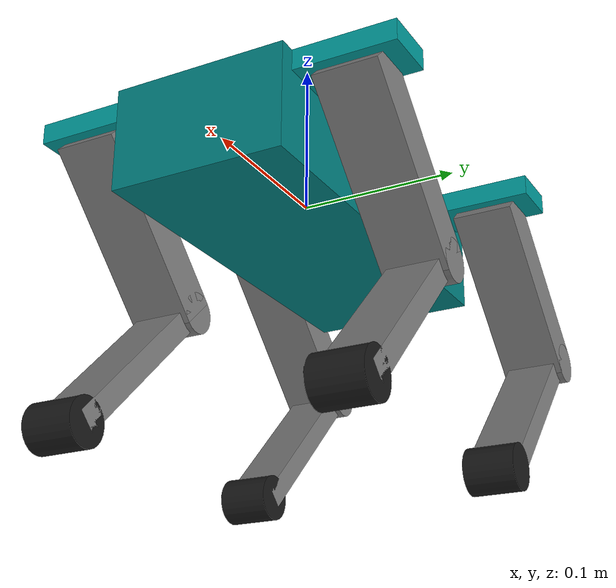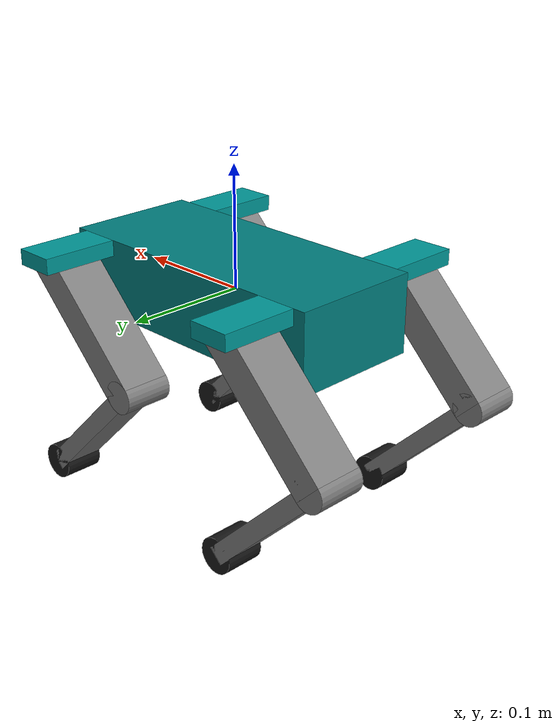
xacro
<?xml version="1.0"?>
<robot name="sparke" xmlns:xacro="http://ros.org/wiki/xacro">
	<!-- Constants -->
  <xacro:property name="base_length" value="0.254"/>
	<xacro:property name="base_width" value="0.11"/>
  <xacro:property name="base_height" value="0.065"/>

  <xacro:property name="shoulder_length" value="0.034"/>
	<xacro:property name="shoulder_width" value="0.0635"/>
  <xacro:property name="shoulder_height" value="0.013"/>

  <xacro:property name="leg_length" value="0.125"/>
	<xacro:property name="leg_width" value="0.040"/>
  <xacro:property name="leg_height" value="0.027"/>

  <xacro:property name="elbow_radius" value="0.0135"/>
	<xacro:property name="elbow_width" value="0.040"/>

  <xacro:property name="wrist_length" value="0.135"/>
	<xacro:property name="wrist_width" value="0.0325"/>
  <xacro:property name="wrist_height" value="0.015"/>

  <xacro:property name="foot_radius" value="0.015"/>
	<xacro:property name="foot_width" value="0.0325"/>

  <!-- Define intertial property macros  -->
  <xacro:macro name="box_inertia" params="m w h d">
    <inertial>
      <origin xyz="0 0 0" rpy="${pi/2} 0 ${pi/2}"/>
      <mass value="${m}"/>
      <inertia ixx="${(m/12) * (h*h + d*d)}" ixy="0.0" ixz="0.0" iyy="${(m/12) * (w*w + d*d)}" iyz="0.0" izz="${(m/12) * (w*w + h*h)}"/>
    </inertial>
  </xacro:macro>

  <xacro:macro name="cylinder_inertia" params="m r h">
    <inertial>
      <origin xyz="0 0 0" rpy="${pi/2} 0 0" />
      <mass value="${m}"/>
      <inertia ixx="${(m/12) * (3*r*r + h*h)}" ixy = "0" ixz = "0" iyy="${(m/12) * (3*r*r + h*h)}" iyz = "0" izz="${(m/2) * (r*r)}"/>
    </inertial>
  </xacro:macro>

  <xacro:macro name="sphere_inertia" params="m r">
    <inertial>
      <mass value="${m}"/>
      <inertia ixx="${(2/5) * m * (r*r)}" ixy="0.0" ixz="0.0" iyy="${(2/5) * m * (r*r)}" iyz="0.0" izz="${(2/5) * m * (r*r)}"/>
    </inertial>
  </xacro:macro>

	<!-- Robot Base -->
  <link name="base_link">
    <visual>
      <geometry>
        <box size="${base_length} ${base_width} ${base_height}"/>
      </geometry>
      <material name="Body">
        <color rgba="0 0.5 0.5 1"/>
      </material>
    </visual>

    <collision>
      <geometry>
        <box size="${base_length} ${base_width} ${base_height}"/>
      </geometry>
    </collision>

    <xacro:box_inertia m="1.0" w="${base_width}" d="${base_length}" h="${base_height}"/>
  </link>

  <gazebo reference="base_link">
      <mu>50</mu>
      <mu2>25</mu2>
      <kp value="50000.0"/>
      <kd value="0.05"/>
      <dampingFactor value="0.0"/>
    </gazebo>

	<!-- Robot Footprint -->
  <link name="base_footprint">
    <xacro:box_inertia m="1.0" w="${base_width}" d="${base_length}" h="${base_height}"/>
  </link>

  <gazebo reference="base_footprint">
      <mu>50</mu>
      <mu2>25</mu2>
      <kp value="50000.0"/>
      <kd value="0.05"/>
      <dampingFactor value="0.0"/>
  </gazebo>

  <joint name="base_joint" type="fixed">
    <parent link="base_footprint"/>
    <child link="base_link"/>
    <origin xyz="0.0 0.0 0.0" rpy="0 0 0"/>
  </joint>

  <!-- Shoulders -->
  <xacro:macro name="shoulder" params="prefix x_reflect y_reflect x_pos y_pos z_pos">
    <link name="${prefix}_b2s_link">
      <visual>
        <origin xyz="0 0 0" rpy="0 0 0"/>
        <geometry>
            <box size="${shoulder_length} ${shoulder_width} ${shoulder_height}"/>
        </geometry>
        <material name="Shoulder">
          <color rgba="0 0.6 0.6 1.0"/>
        </material>
      </visual>

      <collision>
        <geometry>
          <box size="${shoulder_length} ${shoulder_width} ${shoulder_height}"/>
        </geometry>
      </collision>

      <xacro:box_inertia m="1.0" w="${shoulder_width}" d="${shoulder_length}" h="${shoulder_height}"/>

    </link>

    <joint name="${prefix}_b2s_joint" type="revolute">
      <parent link="base_link"/>
      <child link="${prefix}_b2s_link"/>
      <origin xyz="${(x_pos - (shoulder_length/25)) * x_reflect} ${(y_pos + (shoulder_width/2)) * y_reflect} ${z_pos - (shoulder_height/2)}" rpy="0 0 0"/>
      <axis xyz="1 0 0"/>
      <limit effort="1000" lower="0" upper="${pi/4}" velocity="0.0"/>
      <dynamics damping="0" friction="1"/>
    </joint>

    <gazebo reference="${prefix}_b2s_link">
      <mu>50</mu>
      <mu2>25</mu2>
      <kp value="50000.0"/>
      <kd value="0.05"/>
      <dampingFactor value="0.0"/>
    </gazebo>

    <link name="${prefix}_shoulder_link">
      <visual>
        <origin xyz="0 0 0" rpy="0 0 0"/>
        <geometry>
            <box size="${shoulder_length} ${shoulder_width} ${shoulder_height}"/>
        </geometry>
        <material name="Shoulder">
          <color rgba="0 0.6 0.6 1.0"/>
        </material>
      </visual>

      <collision>
        <geometry>
          <box size="${shoulder_length} ${shoulder_width} ${shoulder_height}"/>
        </geometry>
      </collision>

      <xacro:box_inertia m="1.0" w="${shoulder_width}" d="${shoulder_length}" h="${shoulder_height}"/>

    </link>

    <joint name="${prefix}_shoulder_joint" type="revolute">
      <parent link="${prefix}_b2s_link"/>
      <child link="${prefix}_shoulder_link"/>
      <origin xyz="0 0 0" rpy="0 0 0"/>
      <axis xyz="0 1 0"/>
      <limit effort="1000" lower="${-pi/2}" upper="${pi/2}" velocity="0.0"/>
      <dynamics damping="0" friction="1"/>
    </joint>

    <gazebo reference="${prefix}_shoulder_link">
      <mu>50</mu>
      <mu2>25</mu2>
      <kp value="50000.0"/>
      <kd value="0.05"/>
      <dampingFactor value="0.0"/>
    </gazebo>
  </xacro:macro>

  <!-- Legs -->
  <xacro:macro name="leg" params="prefix x_reflect y_reflect x_pos y_pos z_pos">
    <link name="${prefix}_leg_link">
      <visual>
        <origin xyz="0 0 0" rpy="0 0 0"/>
        <geometry>
            <box size="${leg_length} ${leg_width} ${leg_height}"/>
        </geometry>
        <material name="Body">
          <color rgba="0.5 0.5 0.5 1.0"/>
        </material>
      </visual>

      <collision>
        <geometry>
          <box size="${leg_length} ${leg_width} ${leg_height}"/>
        </geometry>
      </collision>

      <xacro:box_inertia m="1.0" w="${leg_width}" d="${leg_length}" h="${leg_height}"/>

    </link>

    <gazebo reference="${prefix}_leg_link">
      <mu>50</mu>
      <mu2>25</mu2>
      <kp value="50000.0"/>
      <kd value="0.05"/>
      <dampingFactor value="0.0"/>
    </gazebo>

    <joint name="${prefix}_leg_joint" type="fixed">
      <parent link="${prefix}_shoulder_link"/>
      <child link="${prefix}_leg_link"/>
      <origin xyz="${(x_pos - (leg_length/25)) * x_reflect} ${(y_pos + (leg_width/2)) * y_reflect} ${z_pos - (leg_height/2)}" rpy="0 ${-pi/4} 0"/>
      <axis xyz="0 1 0"/>
    </joint>

    <link name="${prefix}_elbow_link">
      <visual>
        <origin xyz="0 0 0" rpy="0 ${pi/2} 0"/>
        <geometry>
            <cylinder radius="${elbow_radius}" length="${elbow_width}"/>
        </geometry>
        <material name="Body">
          <color rgba="0.5 0.5 0.5 1.0"/>
        </material>
      </visual>

      <collision>
        <geometry>
          <origin xyz="0 0 0" rpy="0 ${pi/2} 0"/>
          <cylinder radius="${elbow_radius}" length="${elbow_width}"/>
        </geometry>
      </collision>

      <xacro:cylinder_inertia m="1.0" r="${elbow_radius}" h="${elbow_width}"/>

    </link>

    <gazebo reference="${prefix}_elbow_link">
      <mu>50</mu>
      <mu2>25</mu2>
      <kp value="50000.0"/>
      <kd value="0.05"/>
      <dampingFactor value="0.0"/>
    </gazebo>

    <joint name="${prefix}_elbow_joint" type="revolute">
      <parent link="${prefix}_leg_link"/>
      <child link="${prefix}_elbow_link"/>
      <origin xyz="${-leg_length/2} 0 0" rpy="0 0 ${pi/2}"/>
      <axis xyz="1 0 0"/>
      <limit effort="1000" lower="${-pi/2}" upper="${pi/2}" velocity="0.0"/>
      <dynamics damping="0" friction="1"/>
    </joint>
  </xacro:macro>

  <!-- Wrists -->
  <xacro:macro name="wrist" params="prefix x_reflect y_reflect x_pos y_pos z_pos">
    <link name="${prefix}_wrist_link">
      <visual>
        <origin xyz="0 0 0" rpy="0 0 0"/>
        <geometry>
            <box size="${wrist_length} ${wrist_width} ${wrist_height}"/>
        </geometry>
        <material name="Gray">
          <color rgba="0.5 0.5 0.5 1.0"/>
        </material>
      </visual>

      <collision>
        <geometry>
          <box size="${wrist_length} ${wrist_width} ${wrist_height}"/>
        </geometry>
      </collision>

      <xacro:box_inertia m="1.0" w="${wrist_width}" d="${wrist_length}" h="${wrist_height}"/>
    </link>

    <gazebo reference="${prefix}_wrist_link">
      <mu>50</mu>
      <mu2>25</mu2>
      <kp value="50000.0"/>
      <kd value="0.05"/>
      <dampingFactor value="0.0"/>
    </gazebo>

    <joint name="${prefix}_wrist_joint" type="fixed">
      <parent link="${prefix}_elbow_link"/>
      <child link="${prefix}_wrist_link"/>
      <origin xyz="0 0 ${-wrist_length/2}" rpy="0 ${pi/2} ${pi/2}"/>
      <axis xyz="0 1 0"/>
    </joint>

    <link name="${prefix}_foot_link">
      <visual>
        <origin xyz="0 0 0" rpy="0 0 0"/>
        <geometry>
            <cylinder radius="${foot_radius}" length="${foot_width}"/>
        </geometry>
        <material name="black">
          <color rgba="0.1 0.1 0.1 1"/>
        </material>
      </visual>

      <collision>
        <geometry>
          <cylinder radius="${foot_radius}" length="${foot_width}"/>
        </geometry>
      </collision>

      <xacro:cylinder_inertia m="1.0" r="${foot_radius}" h="${foot_width}"/>
    </link>

    <gazebo reference="${prefix}_foot_link">
      <mu>50</mu>
      <mu2>25</mu2>
      <kp value="50000.0"/>
      <kd value="0.05"/>
      <dampingFactor value="0.0"/>
    </gazebo>

    <joint name="${prefix}_foot_joint" type="fixed">
      <parent link="${prefix}_wrist_link"/>
      <child link="${prefix}_foot_link"/>
      <origin xyz="${wrist_length/2} 0 0" rpy="0 ${pi/2} ${pi/2}"/>
      <axis xyz="0 1 0"/>
    </joint>
  </xacro:macro>

  <xacro:shoulder prefix="fl" x_reflect="1" y_reflect="1" x_pos="0.101" y_pos="${base_width/2}" z_pos="${base_height/2}"/>
  <xacro:shoulder prefix="fr" x_reflect="1" y_reflect="-1" x_pos="0.101" y_pos="${base_width/2}" z_pos="${base_height/2}"/>
  <xacro:shoulder prefix="br" x_reflect="-1" y_reflect="-1" x_pos="0.101" y_pos="${base_width/2}" z_pos="${base_height/2}"/>
  <xacro:shoulder prefix="bl" x_reflect="-1" y_reflect="1" x_pos="0.101" y_pos="${base_width/2}" z_pos="${base_height/2}"/>

  <xacro:leg prefix="fl" x_reflect="1" y_reflect="1" x_pos="${-(leg_length/2)+(shoulder_length*0.9)}" y_pos="${-leg_width/2}" z_pos="${-(leg_length/4)-(shoulder_height/4)}"/>
  <xacro:leg prefix="fr" x_reflect="1" y_reflect="1" x_pos="${-(leg_length/2)+(shoulder_length*0.9)}" y_pos="${-leg_width/2}" z_pos="${-(leg_length/4)-(shoulder_height/4)}"/>
  <xacro:leg prefix="br" x_reflect="1" y_reflect="1" x_pos="${-(leg_length/2)+(shoulder_length*0.9)}" y_pos="${-leg_width/2}" z_pos="${-(leg_length/4)-(shoulder_height/4)}"/>
  <xacro:leg prefix="bl" x_reflect="1" y_reflect="1" x_pos="${-(leg_length/2)+(shoulder_length*0.9)}" y_pos="${-leg_width/2}" z_pos="${-(leg_length/4)-(shoulder_height/4)}"/>

  <xacro:wrist prefix="fl" x_reflect="1" y_reflect="1" x_pos="0" y_pos="0" z_pos="0"/>
  <xacro:wrist prefix="fr" x_reflect="1" y_reflect="1" x_pos="0" y_pos="0" z_pos="0"/>
  <xacro:wrist prefix="br" x_reflect="1" y_reflect="1" x_pos="0" y_pos="0" z_pos="0"/>
  <xacro:wrist prefix="bl" x_reflect="1" y_reflect="1" x_pos="0" y_pos="0" z_pos="0"/>

  <ros2_control name="GazeboSystem" type="system">
    <hardware>
      <plugin>gazebo_ros2_control/GazeboSystem</plugin>
    </hardware>

    <joint name="fl_elbow_joint">
      <command_interface name="position">
        <param name="min">-1.57</param>
        <param name="max">1.57</param>
      </command_interface>
      <state_interface name="position">
        <param name="initial_value">0.0</param>
      </state_interface>
      <state_interface name="velocity"/>
      <state_interface name="effort"/>
    </joint>
    <joint name="fr_elbow_joint">
      <command_interface name="position">
        <param name="min">-1.57</param>
        <param name="max">1.57</param>
      </command_interface>
      <state_interface name="position">
        <param name="initial_value">0.0</param>
      </state_interface>
      <state_interface name="velocity"/>
      <state_interface name="effort"/>
    </joint>
    <joint name="bl_elbow_joint">
      <command_interface name="position">
        <param name="min">-1.57</param>
        <param name="max">1.57</param>
      </command_interface>
      <state_interface name="position">
        <param name="initial_value">0.0</param>
      </state_interface>
      <state_interface name="velocity"/>
      <state_interface name="effort"/>
    </joint>
    <joint name="br_elbow_joint">
      <command_interface name="position">
        <param name="min">-1.57</param>
        <param name="max">1.57</param>
      </command_interface>
      <state_interface name="position">
        <param name="initial_value">0.0</param>
      </state_interface>
      <state_interface name="velocity"/>
      <state_interface name="effort"/>
    </joint>
    <joint name="fl_b2s_joint">
      <command_interface name="position">
        <param name="min">-1.57</param>
        <param name="max">1.57</param>
      </command_interface>
      <state_interface name="position">
        <param name="initial_value">0.0</param>
      </state_interface>
      <state_interface name="velocity"/>
      <state_interface name="effort"/>
    </joint>
    <joint name="fr_b2s_joint">
      <command_interface name="position">
        <param name="min">-1.57</param>
        <param name="max">1.57</param>
      </command_interface>
      <state_interface name="position">
        <param name="initial_value">0.0</param>
      </state_interface>
      <state_interface name="velocity"/>
      <state_interface name="effort"/>
    </joint>
    <joint name="bl_b2s_joint">
      <command_interface name="position">
        <param name="min">-1.57</param>
        <param name="max">1.57</param>
      </command_interface>
      <state_interface name="position">
        <param name="initial_value">0.0</param>
      </state_interface>
      <state_interface name="velocity"/>
      <state_interface name="effort"/>
    </joint>
    <joint name="br_b2s_joint">
      <command_interface name="position">
        <param name="min">-1.57</param>
        <param name="max">1.57</param>
      </command_interface>
      <state_interface name="position">
        <param name="initial_value">0.0</param>
      </state_interface>
      <state_interface name="velocity"/>
      <state_interface name="effort"/>
    </joint>
    <joint name="fl_shoulder_joint">
      <command_interface name="position">
        <param name="min">-1.57</param>
        <param name="max">1.57</param>
      </command_interface>
      <state_interface name="position">
        <param name="initial_value">0.0</param>
      </state_interface>
      <state_interface name="velocity"/>
      <state_interface name="effort"/>
    </joint>
    <joint name="fr_shoulder_joint">
      <command_interface name="position">
        <param name="min">-1.57</param>
        <param name="max">1.57</param>
      </command_interface>
      <state_interface name="position">
        <param name="initial_value">0.0</param>
      </state_interface>
      <state_interface name="velocity"/>
      <state_interface name="effort"/>
    </joint>
    <joint name="bl_shoulder_joint">
      <command_interface name="position">
        <param name="min">-1.57</param>
        <param name="max">1.57</param>
      </command_interface>
      <state_interface name="position">
        <param name="initial_value">0.0</param>
      </state_interface>
      <state_interface name="velocity"/>
      <state_interface name="effort"/>
    </joint>
    <joint name="br_shoulder_joint">
      <command_interface name="position">
        <param name="min">-1.57</param>
        <param name="max">1.57</param>
      </command_interface>
      <state_interface name="position">
        <param name="initial_value">0.0</param>
      </state_interface>
      <state_interface name="velocity"/>
      <state_interface name="effort"/>
    </joint>
  </ros2_control>

  <gazebo>
    <plugin name="gazebo_ros2_control" filename="libgazebo_ros2_control.so">
      <robot_sim_type>gazebo_ros2_control/GazeboSystem</robot_sim_type>
      <parameters>$(find sparke_description)/params/simple_controller.yaml</parameters>
    </plugin>
  </gazebo>

  <transmission name="tran1">
    <type>transmission_interface/SimpleTransmission</type>
    <joint name="fl_elbow_joint">
      <hardwareInterface>hardware_interface/PositionJointInterface</hardwareInterface>
    </joint>
    <actuator name="motor1">
      <hardwareInterface>hardware_interface/PositionJointInterface</hardwareInterface>
      <mechanicalReduction>1</mechanicalReduction>
    </actuator>
  </transmission>
  <transmission name="tran2">
    <type>transmission_interface/SimpleTransmission</type>
    <joint name="fr_elbow_joint">
      <hardwareInterface>hardware_interface/PositionJointInterface</hardwareInterface>
    </joint>
    <actuator name="motor2">
      <hardwareInterface>hardware_interface/PositionJointInterface</hardwareInterface>
      <mechanicalReduction>1</mechanicalReduction>
    </actuator>
  </transmission>
  <transmission name="tran3">
    <type>transmission_interface/SimpleTransmission</type>
    <joint name="bl_elbow_joint">
      <hardwareInterface>hardware_interface/PositionJointInterface</hardwareInterface>
    </joint>
    <actuator name="motor3">
      <hardwareInterface>hardware_interface/PositionJointInterface</hardwareInterface>
      <mechanicalReduction>1</mechanicalReduction>
    </actuator>
  </transmission>
  <transmission name="tran4">
    <type>transmission_interface/SimpleTransmission</type>
    <joint name="br_elbow_joint">
      <hardwareInterface>hardware_interface/PositionJointInterface</hardwareInterface>
    </joint>
    <actuator name="motor4">
      <hardwareInterface>hardware_interface/PositionJointInterface</hardwareInterface>
      <mechanicalReduction>1</mechanicalReduction>
    </actuator>
  </transmission>

  <transmission name="tran5">
    <type>transmission_interface/SimpleTransmission</type>
    <joint name="fl_b2s_joint">
      <hardwareInterface>hardware_interface/PositionJointInterface</hardwareInterface>
    </joint>
    <actuator name="motor5">
      <hardwareInterface>hardware_interface/PositionJointInterface</hardwareInterface>
      <mechanicalReduction>1</mechanicalReduction>
    </actuator>
  </transmission>
  <transmission name="tran6">
    <type>transmission_interface/SimpleTransmission</type>
    <joint name="fr_b2s_joint">
      <hardwareInterface>hardware_interface/PositionJointInterface</hardwareInterface>
    </joint>
    <actuator name="motor6">
      <hardwareInterface>hardware_interface/PositionJointInterface</hardwareInterface>
      <mechanicalReduction>1</mechanicalReduction>
    </actuator>
  </transmission>
  <transmission name="tran7">
    <type>transmission_interface/SimpleTransmission</type>
    <joint name="bl_b2s_joint">
      <hardwareInterface>hardware_interface/PositionJointInterface</hardwareInterface>
    </joint>
    <actuator name="motor7">
      <hardwareInterface>hardware_interface/PositionJointInterface</hardwareInterface>
      <mechanicalReduction>1</mechanicalReduction>
    </actuator>
  </transmission>
  <transmission name="tran8">
    <type>transmission_interface/SimpleTransmission</type>
    <joint name="br_b2s_joint">
      <hardwareInterface>hardware_interface/PositionJointInterface</hardwareInterface>
    </joint>
    <actuator name="motor8">
      <hardwareInterface>hardware_interface/PositionJointInterface</hardwareInterface>
      <mechanicalReduction>1</mechanicalReduction>
    </actuator>
  </transmission>

  <transmission name="tran9">
    <type>transmission_interface/SimpleTransmission</type>
    <joint name="fl_shoulder_joint">
      <hardwareInterface>hardware_interface/PositionJointInterface</hardwareInterface>
    </joint>
    <actuator name="motor9">
      <hardwareInterface>hardware_interface/PositionJointInterface</hardwareInterface>
      <mechanicalReduction>1</mechanicalReduction>
    </actuator>
  </transmission>
  <transmission name="tran10">
    <type>transmission_interface/SimpleTransmission</type>
    <joint name="fr_shoulder_joint">
      <hardwareInterface>hardware_interface/PositionJointInterface</hardwareInterface>
    </joint>
    <actuator name="motor10">
      <hardwareInterface>hardware_interface/PositionJointInterface</hardwareInterface>
      <mechanicalReduction>1</mechanicalReduction>
    </actuator>
  </transmission>
  <transmission name="tran11">
    <type>transmission_interface/SimpleTransmission</type>
    <joint name="bl_shoulder_joint">
      <hardwareInterface>hardware_interface/PositionJointInterface</hardwareInterface>
    </joint>
    <actuator name="motor11">
      <hardwareInterface>hardware_interface/PositionJointInterface</hardwareInterface>
      <mechanicalReduction>1</mechanicalReduction>
    </actuator>
  </transmission>
  <transmission name="tran12">
    <type>transmission_interface/SimpleTransmission</type>
    <joint name="br_shoulder_joint">
      <hardwareInterface>hardware_interface/PositionJointInterface</hardwareInterface>
    </joint>
    <actuator name="motor12">
      <hardwareInterface>hardware_interface/PositionJointInterface</hardwareInterface>
      <mechanicalReduction>1</mechanicalReduction>
    </actuator>
  </transmission>

</robot>
